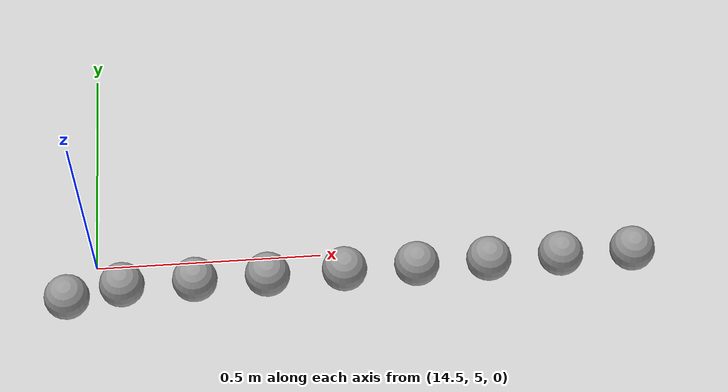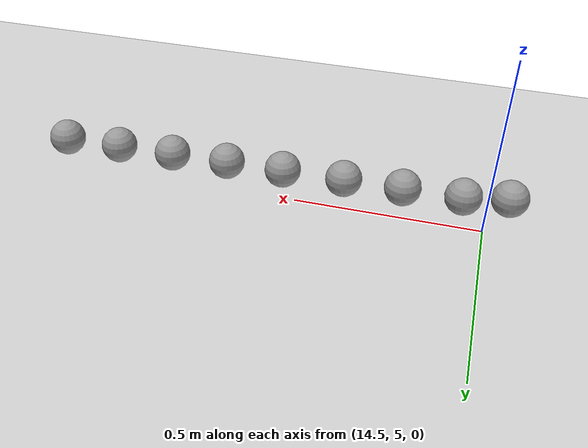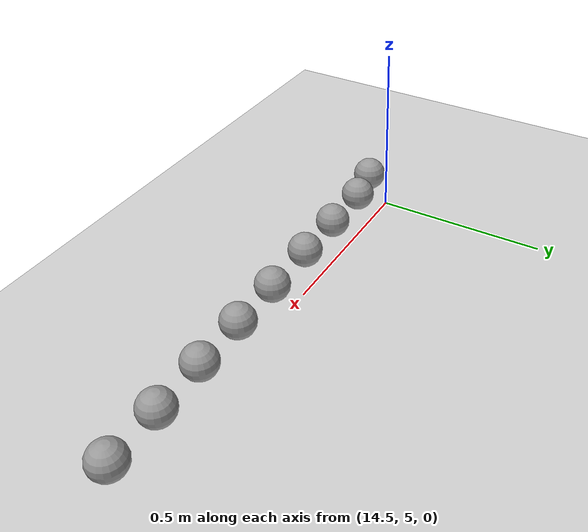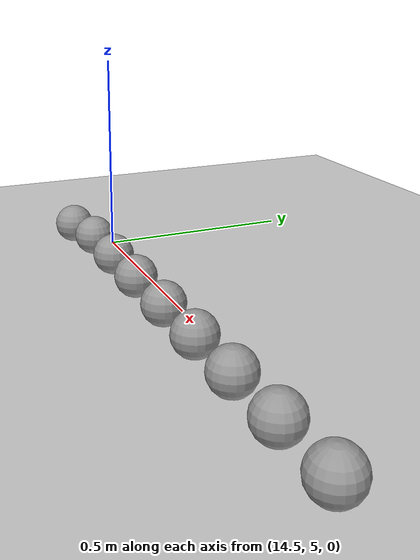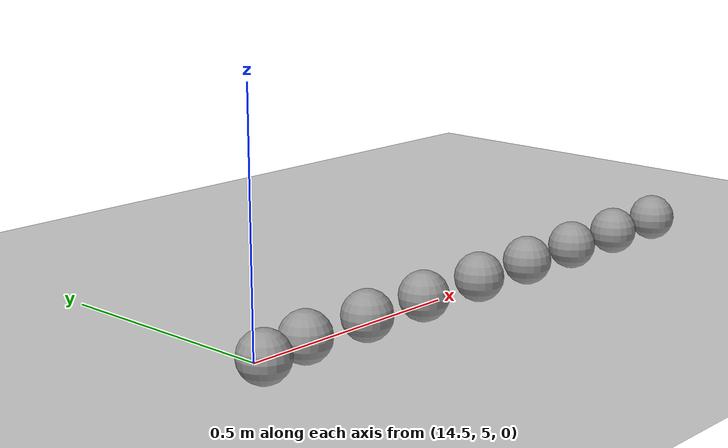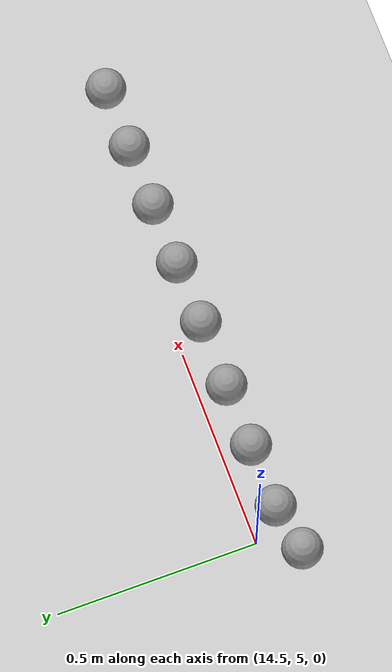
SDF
<sdf version="1.6">
 <world name="default">
  <model name="ground_plane">
   <static>1</static>
   <link name="link">
    <collision name="collision">
     <geometry><plane><normal>0 0 1</normal><size>100 100</size></plane></geometry>
     <surface><friction><ode><mu>100</mu><mu2>50</mu2></ode></friction></surface>
    </collision>
    <visual name="visual">
     <cast_shadows>0</cast_shadows>
     <geometry><plane><normal>0 0 1</normal><size>100 100</size></plane></geometry>
     <material>
      <script><uri>file://media/materials/scripts/gazebo.material</uri><name>Gazebo/Grey</name></script>
     </material>
    </visual>
   </link>
  </model>
  <model name="unit_sphere_0_383">
   <pose>15.690000 4.944000 0.050000 0 -0 0</pose>
   <link name="link">
    <inertial>
     <mass>1</mass>
     <inertia><ixx>0.1</ixx><ixy>0</ixy><ixz>0</ixz><iyy>0.1</iyy><iyz>0</iyz><izz>0.1</izz></inertia>
    </inertial>
    <collision name="collision"><geometry><sphere><radius>0.050000</radius></sphere></geometry></collision>
    <visual name="visual">
     <geometry><sphere><radius>0.050000</radius></sphere></geometry>
     <material>
      <script><name>Gazebo/Grey</name><uri>file://media/materials/scripts/gazebo.material</uri></script>
     </material>
    </visual>
   </link>
  </model>
  <model name="unit_sphere_0_384">
   <pose>15.530000 4.942000 0.050000 0 -0 0</pose>
   <link name="link">
    <inertial>
     <mass>1</mass>
     <inertia><ixx>0.1</ixx><ixy>0</ixy><ixz>0</ixz><iyy>0.1</iyy><iyz>0</iyz><izz>0.1</izz></inertia>
    </inertial>
    <collision name="collision"><geometry><sphere><radius>0.050000</radius></sphere></geometry></collision>
    <visual name="visual">
     <geometry><sphere><radius>0.050000</radius></sphere></geometry>
     <material>
      <script><name>Gazebo/Grey</name><uri>file://media/materials/scripts/gazebo.material</uri></script>
     </material>
    </visual>
   </link>
  </model>
  <model name="unit_sphere_0_385">
   <pose>15.370000 4.940000 0.050000 0 -0 0</pose>
   <link name="link">
    <inertial>
     <mass>1</mass>
     <inertia><ixx>0.1</ixx><ixy>0</ixy><ixz>0</ixz><iyy>0.1</iyy><iyz>0</iyz><izz>0.1</izz></inertia>
    </inertial>
    <collision name="collision"><geometry><sphere><radius>0.050000</radius></sphere></geometry></collision>
    <visual name="visual">
     <geometry><sphere><radius>0.050000</radius></sphere></geometry>
     <material>
      <script><name>Gazebo/Grey</name><uri>file://media/materials/scripts/gazebo.material</uri></script>
     </material>
    </visual>
   </link>
  </model>
  <model name="unit_sphere_0_386">
   <pose>15.210000 4.938000 0.050000 0 -0 0</pose>
   <link name="link">
    <inertial>
     <mass>1</mass>
     <inertia><ixx>0.1</ixx><ixy>0</ixy><ixz>0</ixz><iyy>0.1</iyy><iyz>0</iyz><izz>0.1</izz></inertia>
    </inertial>
    <collision name="collision"><geometry><sphere><radius>0.050000</radius></sphere></geometry></collision>
    <visual name="visual">
     <geometry><sphere><radius>0.050000</radius></sphere></geometry>
     <material>
      <script><name>Gazebo/Grey</name><uri>file://media/materials/scripts/gazebo.material</uri></script>
     </material>
    </visual>
   </link>
  </model>
  <model name="unit_sphere_0_387">
   <pose>15.050000 4.936000 0.050000 0 -0 0</pose>
   <link name="link">
    <inertial>
     <mass>1</mass>
     <inertia><ixx>0.1</ixx><ixy>0</ixy><ixz>0</ixz><iyy>0.1</iyy><iyz>0</iyz><izz>0.1</izz></inertia>
    </inertial>
    <collision name="collision"><geometry><sphere><radius>0.050000</radius></sphere></geometry></collision>
    <visual name="visual">
     <geometry><sphere><radius>0.050000</radius></sphere></geometry>
     <material>
      <script><name>Gazebo/Grey</name><uri>file://media/materials/scripts/gazebo.material</uri></script>
     </material>
    </visual>
   </link>
  </model>
  <model name="unit_sphere_0_388">
   <pose>14.880000 4.934000 0.050000 0 -0 0</pose>
   <link name="link">
    <inertial>
     <mass>1</mass>
     <inertia><ixx>0.1</ixx><ixy>0</ixy><ixz>0</ixz><iyy>0.1</iyy><iyz>0</iyz><izz>0.1</izz></inertia>
    </inertial>
    <collision name="collision"><geometry><sphere><radius>0.050000</radius></sphere></geometry></collision>
    <visual name="visual">
     <geometry><sphere><radius>0.050000</radius></sphere></geometry>
     <material>
      <script><name>Gazebo/Grey</name><uri>file://media/materials/scripts/gazebo.material</uri></script>
     </material>
    </visual>
   </link>
  </model>
  <model name="unit_sphere_0_389">
   <pose>14.720000 4.932000 0.050000 0 -0 0</pose>
   <link name="link">
    <inertial>
     <mass>1</mass>
     <inertia><ixx>0.1</ixx><ixy>0</ixy><ixz>0</ixz><iyy>0.1</iyy><iyz>0</iyz><izz>0.1</izz></inertia>
    </inertial>
    <collision name="collision"><geometry><sphere><radius>0.050000</radius></sphere></geometry></collision>
    <visual name="visual">
     <geometry><sphere><radius>0.050000</radius></sphere></geometry>
     <material>
      <script><name>Gazebo/Grey</name><uri>file://media/materials/scripts/gazebo.material</uri></script>
     </material>
    </visual>
   </link>
  </model>
  <model name="unit_sphere_0_390">
   <pose>14.560000 4.930000 0.050000 0 -0 0</pose>
   <link name="link">
    <inertial>
     <mass>1</mass>
     <inertia><ixx>0.1</ixx><ixy>0</ixy><ixz>0</ixz><iyy>0.1</iyy><iyz>0</iyz><izz>0.1</izz></inertia>
    </inertial>
    <collision name="collision"><geometry><sphere><radius>0.050000</radius></sphere></geometry></collision>
    <visual name="visual">
     <geometry><sphere><radius>0.050000</radius></sphere></geometry>
     <material>
      <script><name>Gazebo/Grey</name><uri>file://media/materials/scripts/gazebo.material</uri></script>
     </material>
    </visual>
   </link>
  </model>
  <model name="unit_sphere_0_391">
   <pose>14.440000 4.908000 0.050000 0 -0 0</pose>
   <link name="link">
    <inertial>
     <mass>1</mass>
     <inertia><ixx>0.1</ixx><ixy>0</ixy><ixz>0</ixz><iyy>0.1</iyy><iyz>0</iyz><izz>0.1</izz></inertia>
    </inertial>
    <collision name="collision"><geometry><sphere><radius>0.050000</radius></sphere></geometry></collision>
    <visual name="visual">
     <geometry><sphere><radius>0.050000</radius></sphere></geometry>
     <material>
      <script><name>Gazebo/Grey</name><uri>file://media/materials/scripts/gazebo.material</uri></script>
     </material>
    </visual>
   </link>
  </model>
 </world>
</sdf>
